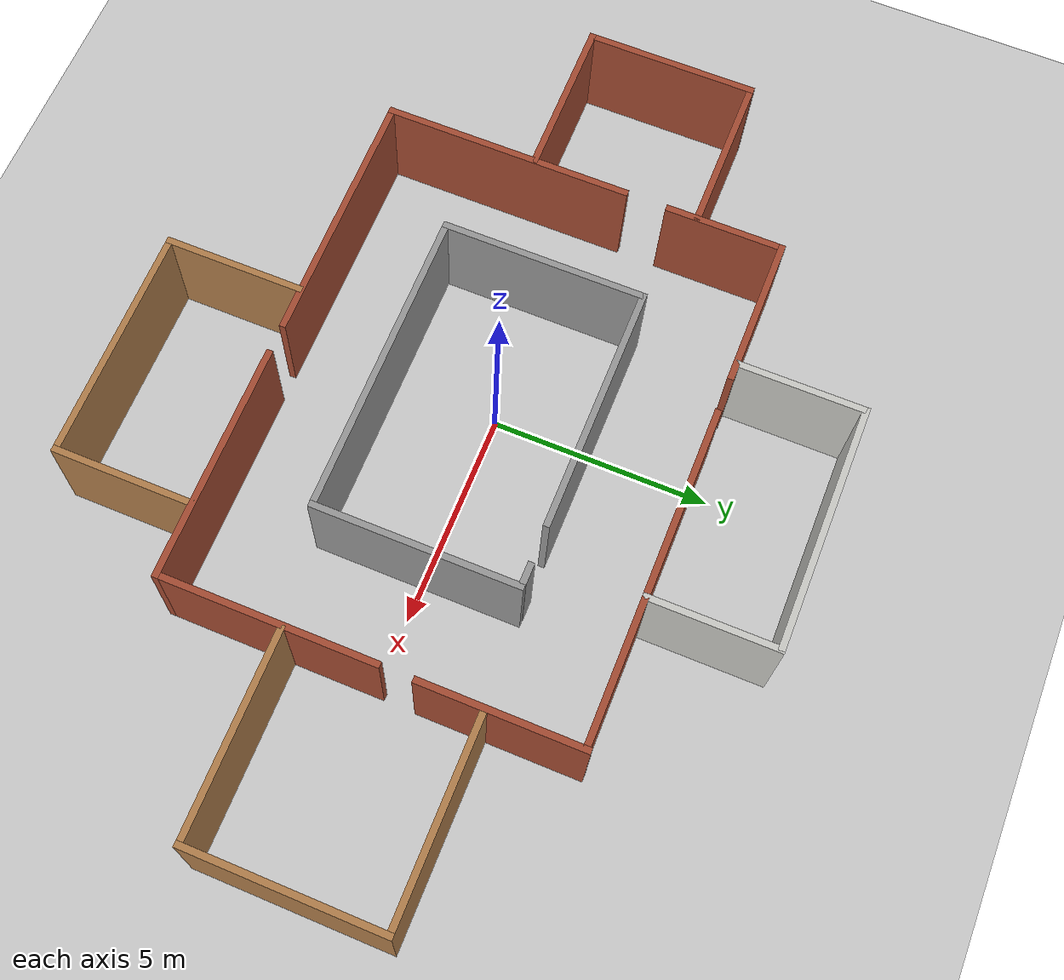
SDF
<sdf version="1.6">
 <world name="default">
  <light name="sun" type="directional">
   <pose>0 0 10 0 -0 0</pose>
   <diffuse>0.8 0.8 0.8 1</diffuse>
   <specular>0.2 0.2 0.2 1</specular>
   <attenuation>
    <range>1000</range>
    <constant>0.9</constant>
    <linear>0.01</linear>
    <quadratic>0.001</quadratic>
   </attenuation>
   <direction>-0.5 0.1 -0.9</direction>
  </light>
  <model name="ground_plane">
   <static>1</static>
   <link name="link">
    <collision name="collision">
     <geometry><plane><normal>0 0 1</normal><size>100 100</size></plane></geometry>
     <surface><friction><ode><mu>100</mu><mu2>50</mu2></ode></friction></surface>
    </collision>
    <visual name="visual">
     <cast_shadows>0</cast_shadows>
     <geometry><plane><normal>0 0 1</normal><size>100 100</size></plane></geometry>
     <material>
      <script><uri>file://media/materials/scripts/gazebo.material</uri><name>Gazebo/Grey</name></script>
     </material>
    </visual>
   </link>
  </model>
  <gravity>0 0 -9.8</gravity>
  <magnetic_field>6e-06 2.3e-05 -4.2e-05</magnetic_field>
  <atmosphere type="adiabatic"/>
  <physics name="default_physics" default="0" type="ode">
   <max_step_size>0.001</max_step_size>
   <real_time_factor>1</real_time_factor>
   <real_time_update_rate>1000</real_time_update_rate>
  </physics>
  <scene><ambient>0.4 0.4 0.4 1</ambient><background>0.7 0.7 0.7 1</background><shadows>1</shadows></scene>
  <audio><device>default</device></audio>
  <spherical_coordinates>
   <surface_model>EARTH_WGS84</surface_model>
   <latitude_deg>0</latitude_deg>
   <longitude_deg>0</longitude_deg>
   <elevation>0</elevation>
   <heading_deg>0</heading_deg>
  </spherical_coordinates>
  <model name="smallOffice">
   <pose>1.24633 -0.201638 0 0 -0 0</pose>
   <link name="Wall_16">
    <collision name="Wall_16_Collision">
     <geometry><box><size>5.8 0.15 2.5</size></box></geometry>
     <pose>0 0 1.25 0 -0 0</pose>
    </collision>
    <visual name="Wall_16_Visual">
     <pose>0 0 1.25 0 -0 0</pose>
     <geometry><box><size>5.8 0.15 2.5</size></box></geometry>
     <material>
      <script><uri>file://media/materials/scripts/gazebo.material</uri><name>Gazebo/Grey</name></script>
      <ambient>1 1 1 1</ambient>
     </material>
     <meta><layer>0</layer></meta>
    </visual>
    <pose>-1.39033 2.38964 0 0 -0 0</pose>
   </link>
   <link name="Wall_30">
    <collision name="Wall_30_Collision">
     <geometry><box><size>0.5 0.15 2.5</size></box></geometry>
     <pose>0 0 1.25 0 -0 0</pose>
    </collision>
    <visual name="Wall_30_Visual">
     <pose>0 0 1.25 0 -0 0</pose>
     <geometry><box><size>0.5 0.15 2.5</size></box></geometry>
     <material>
      <script><uri>file://media/materials/scripts/gazebo.material</uri><name>Gazebo/Grey</name></script>
      <ambient>1 1 1 1</ambient>
     </material>
     <meta><layer>0</layer></meta>
    </visual>
    <pose>2.57731 2.39943 0 0 -0 0</pose>
   </link>
   <link name="Wall_34">
    <collision name="Wall_34_Collision">
     <geometry><box><size>3.75 0.15 2.5</size></box></geometry>
     <pose>0 0 1.25 0 -0 0</pose>
    </collision>
    <visual name="Wall_34_Visual">
     <pose>0 0 1.25 0 -0 0</pose>
     <geometry><box><size>3.75 0.15 2.5</size></box></geometry>
     <material>
      <script><uri>file://media/materials/scripts/gazebo.material</uri><name>Gazebo/Bricks</name></script>
      <ambient>0.760784 0.662745 0.627451 1</ambient>
     </material>
     <meta><layer>0</layer></meta>
    </visual>
    <pose>5.47021 3.01648 0 0 -0 -1.5708</pose>
   </link>
   <link name="Wall_36">
    <collision name="Wall_36_Collision">
     <geometry><box><size>5 0.15 2.5</size></box></geometry>
     <pose>0 0 1.25 0 -0 0</pose>
    </collision>
    <visual name="Wall_36_Visual">
     <pose>0 0 1.25 0 -0 0</pose>
     <geometry><box><size>5 0.15 2.5</size></box></geometry>
     <material>
      <script><uri>file://media/materials/scripts/gazebo.material</uri><name>Gazebo/Bricks</name></script>
      <ambient>0.760784 0.662745 0.627451 1</ambient>
     </material>
     <meta><layer>0</layer></meta>
    </visual>
    <pose>5.4599 -2.0588 0 0 -0 -1.5708</pose>
   </link>
   <link name="Wall_41">
    <collision name="Wall_41_Collision">
     <geometry><box><size>4.75 0.15 2.5</size></box></geometry>
     <pose>0 0 1.25 0 -0 0</pose>
    </collision>
    <visual name="Wall_41_Visual">
     <pose>0 0 1.25 0 -0 0</pose>
     <geometry><box><size>4.75 0.15 2.5</size></box></geometry>
     <material>
      <script><uri>file://media/materials/scripts/gazebo.material</uri><name>Gazebo/Wood</name></script>
      <ambient>0.760784 0.662745 0.627451 1</ambient>
     </material>
     <meta><layer>0</layer></meta>
    </visual>
    <pose>7.82288 2.66227 0 0 -0 0</pose>
   </link>
   <link name="Wall_42">
    <collision name="Wall_42_Collision">
     <geometry><box><size>4.5 0.15 2.5</size></box></geometry>
     <pose>0 0 1.25 0 -0 0</pose>
    </collision>
    <visual name="Wall_42_Visual">
     <pose>0 0 1.25 0 -0 0</pose>
     <geometry><box><size>4.5 0.15 2.5</size></box></geometry>
     <material>
      <script><uri>file://media/materials/scripts/gazebo.material</uri><name>Gazebo/Wood</name></script>
      <ambient>0.760784 0.662745 0.627451 1</ambient>
     </material>
     <meta><layer>0</layer></meta>
    </visual>
    <pose>10.1229 0.487267 0 0 -0 -1.5708</pose>
   </link>
   <link name="Wall_43">
    <collision name="Wall_43_Collision">
     <geometry><box><size>4.75 0.15 2.5</size></box></geometry>
     <pose>0 0 1.25 0 -0 0</pose>
    </collision>
    <visual name="Wall_43_Visual">
     <pose>0 0 1.25 0 -0 0</pose>
     <geometry><box><size>4.75 0.15 2.5</size></box></geometry>
     <material>
      <script><uri>file://media/materials/scripts/gazebo.material</uri><name>Gazebo/Wood</name></script>
      <ambient>0.760784 0.662745 0.627451 1</ambient>
     </material>
     <meta><layer>0</layer></meta>
    </visual>
    <pose>7.82288 -1.68773 0 0 -0 3.14159</pose>
   </link>
   <link name="Wall_46">
    <collision name="Wall_46_Collision">
     <geometry><box><size>5.5 0.15 2.5</size></box></geometry>
     <pose>0 0 1.25 0 -0 0</pose>
    </collision>
    <visual name="Wall_46_Visual">
     <pose>0 0 1.25 0 -0 0</pose>
     <geometry><box><size>5.5 0.15 2.5</size></box></geometry>
     <material>
      <script><uri>file://media/materials/scripts/gazebo.material</uri><name>Gazebo/Bricks</name></script>
      <ambient>0.760784 0.662745 0.627451 1</ambient>
     </material>
     <meta><layer>0</layer></meta>
    </visual>
    <pose>2.7849 -4.4838 0 0 -0 3.14159</pose>
   </link>
   <link name="Wall_48">
    <collision name="Wall_48_Collision">
     <geometry><box><size>6 0.15 2.5</size></box></geometry>
     <pose>0 0 1.25 0 -0 0</pose>
    </collision>
    <visual name="Wall_48_Visual">
     <pose>0 0 1.25 0 -0 0</pose>
     <geometry><box><size>6 0.15 2.5</size></box></geometry>
     <material>
      <script><uri>file://media/materials/scripts/gazebo.material</uri><name>Gazebo/Bricks</name></script>
      <ambient>0.760784 0.662745 0.627451 1</ambient>
     </material>
     <meta><layer>0</layer></meta>
    </visual>
    <pose>-3.56994 -4.48309 0 0 -0 3.14159</pose>
   </link>
   <link name="Wall_54">
    <collision name="Wall_54_Collision">
     <geometry><box><size>3.25 0.15 2.5</size></box></geometry>
     <pose>0 0 1.25 0 -0 0</pose>
    </collision>
    <visual name="Wall_54_Visual">
     <pose>0 0 1.25 0 -0 0</pose>
     <geometry><box><size>3.25 0.15 2.5</size></box></geometry>
     <material>
      <script><uri>file://media/materials/scripts/gazebo.material</uri><name>Gazebo/Wood</name></script>
      <ambient>1 1 1 1</ambient>
     </material>
     <meta><layer>0</layer></meta>
    </visual>
    <pose>-1.5452 -6.08171 0 0 -0 -1.5708</pose>
   </link>
   <link name="Wall_55">
    <collision name="Wall_55_Collision">
     <geometry><box><size>5.5 0.15 2.5</size></box></geometry>
     <pose>0 0 1.25 0 -0 0</pose>
    </collision>
    <visual name="Wall_55_Visual">
     <pose>0 0 1.25 0 -0 0</pose>
     <geometry><box><size>5.5 0.15 2.5</size></box></geometry>
     <material>
      <script><uri>file://media/materials/scripts/gazebo.material</uri><name>Gazebo/Wood</name></script>
      <ambient>1 1 1 1</ambient>
     </material>
     <meta><layer>0</layer></meta>
    </visual>
    <pose>1.1298 -7.63171 0 0 -0 0</pose>
   </link>
   <link name="Wall_56">
    <collision name="Wall_56_Collision">
     <geometry><box><size>3.25 0.15 2.5</size></box></geometry>
     <pose>0 0 1.25 0 -0 0</pose>
    </collision>
    <visual name="Wall_56_Visual">
     <pose>0 0 1.25 0 -0 0</pose>
     <geometry><box><size>3.25 0.15 2.5</size></box></geometry>
     <material>
      <script><uri>file://media/materials/scripts/gazebo.material</uri><name>Gazebo/Wood</name></script>
      <ambient>1 1 1 1</ambient>
     </material>
     <meta><layer>0</layer></meta>
    </visual>
    <pose>3.8048 -6.08171 0 0 -0 1.5708</pose>
   </link>
   <link name="Wall_59">
    <collision name="Wall_59_Collision">
     <geometry><box><size>4.75 0.15 2.5</size></box></geometry>
     <pose>0 0 1.25 0 -0 0</pose>
    </collision>
    <visual name="Wall_59_Visual">
     <pose>0 0 1.25 0 -0 0</pose>
     <geometry><box><size>4.75 0.15 2.5</size></box></geometry>
     <material>
      <script><uri>file://media/materials/scripts/gazebo.material</uri><name>Gazebo/Grey</name></script>
      <ambient>1 1 1 1</ambient>
     </material>
     <meta><layer>0</layer></meta>
    </visual>
    <pose>-4.21533 0.089638 0 0 -0 -1.5708</pose>
   </link>
   <link name="Wall_60">
    <collision name="Wall_60_Collision">
     <geometry><box><size>7.25 0.15 2.5</size></box></geometry>
     <pose>0 0 1.25 0 -0 0</pose>
    </collision>
    <visual name="Wall_60_Visual">
     <pose>0 0 1.25 0 -0 0</pose>
     <geometry><box><size>7.25 0.15 2.5</size></box></geometry>
     <material>
      <script><uri>file://media/materials/scripts/gazebo.material</uri><name>Gazebo/Grey</name></script>
      <ambient>1 1 1 1</ambient>
     </material>
     <meta><layer>0</layer></meta>
    </visual>
    <pose>-0.665328 -2.21036 0 0 -0 0</pose>
   </link>
   <link name="Wall_61">
    <collision name="Wall_61_Collision">
     <geometry><box><size>4.75 0.15 2.5</size></box></geometry>
     <pose>0 0 1.25 0 -0 0</pose>
    </collision>
    <visual name="Wall_61_Visual">
     <pose>0 0 1.25 0 -0 0</pose>
     <geometry><box><size>4.75 0.15 2.5</size></box></geometry>
     <material>
      <script><uri>file://media/materials/scripts/gazebo.material</uri><name>Gazebo/Grey</name></script>
      <ambient>1 1 1 1</ambient>
     </material>
     <meta><layer>0</layer></meta>
    </visual>
    <pose>2.88467 0.089638 0 0 -0 1.5708</pose>
   </link>
   <link name="Wall_63">
    <collision name="Wall_63_Collision">
     <geometry><box><size>5.75 0.15 2.5</size></box></geometry>
     <pose>0 0 1.25 0 -0 0</pose>
    </collision>
    <visual name="Wall_63_Visual">
     <pose>0 0 1.25 0 -0 0</pose>
     <geometry><box><size>5.75 0.15 2.5</size></box></geometry>
     <material>
      <script><uri>file://media/materials/scripts/gazebo.material</uri><name>Gazebo/Bricks</name></script>
      <ambient>0.760784 0.662745 0.627451 1</ambient>
     </material>
     <meta><layer>0</layer></meta>
    </visual>
    <pose>-6.49494 -1.68309 0 0 -0 1.5708</pose>
   </link>
   <link name="Wall_65">
    <collision name="Wall_65_Collision">
     <geometry><box><size>2.75 0.15 2.5</size></box></geometry>
     <pose>0 0 1.25 0 -0 0</pose>
    </collision>
    <visual name="Wall_65_Visual">
     <pose>0 0 1.25 0 -0 0</pose>
     <geometry><box><size>2.75 0.15 2.5</size></box></geometry>
     <material>
      <script><uri>file://media/materials/scripts/gazebo.material</uri><name>Gazebo/Bricks</name></script>
      <ambient>0.760784 0.662745 0.627451 1</ambient>
     </material>
     <meta><layer>0</layer></meta>
    </visual>
    <pose>-6.48418 3.46899 0 0 -0 1.5708</pose>
   </link>
   <link name="Wall_72">
    <collision name="Wall_72_Collision">
     <geometry><box><size>3.75 0.15 2.5</size></box></geometry>
     <pose>0 0 1.25 0 -0 0</pose>
    </collision>
    <visual name="Wall_72_Visual">
     <pose>0 0 1.25 0 -0 0</pose>
     <geometry><box><size>3.75 0.15 2.5</size></box></geometry>
     <material>
      <script><uri>file://media/materials/scripts/gazebo.material</uri><name>Gazebo/Bricks</name></script>
      <ambient>1 1 1 1</ambient>
     </material>
     <meta><layer>0</layer></meta>
    </visual>
    <pose>-8.32288 -1.0272 0 0 -0 3.14159</pose>
   </link>
   <link name="Wall_73">
    <collision name="Wall_73_Collision">
     <geometry><box><size>4 0.15 2.5</size></box></geometry>
     <pose>0 0 1.25 0 -0 0</pose>
    </collision>
    <visual name="Wall_73_Visual">
     <pose>0 0 1.25 0 -0 0</pose>
     <geometry><box><size>4 0.15 2.5</size></box></geometry>
     <material>
      <script><uri>file://media/materials/scripts/gazebo.material</uri><name>Gazebo/Bricks</name></script>
      <ambient>1 1 1 1</ambient>
     </material>
     <meta><layer>0</layer></meta>
    </visual>
    <pose>-10.1229 0.897804 0 0 -0 1.5708</pose>
   </link>
   <link name="Wall_74">
    <collision name="Wall_74_Collision">
     <geometry><box><size>3.75 0.15 2.5</size></box></geometry>
     <pose>0 0 1.25 0 -0 0</pose>
    </collision>
    <visual name="Wall_74_Visual">
     <pose>0 0 1.25 0 -0 0</pose>
     <geometry><box><size>3.75 0.15 2.5</size></box></geometry>
     <material>
      <script><uri>file://media/materials/scripts/gazebo.material</uri><name>Gazebo/Bricks</name></script>
      <ambient>1 1 1 1</ambient>
     </material>
     <meta><layer>0</layer></meta>
    </visual>
    <pose>-8.32288 2.8228 0 0 -0 0</pose>
   </link>
   <link name="Wall_76">
    <collision name="Wall_76_Collision">
     <geometry><box><size>3.5 0.15 2.5</size></box></geometry>
     <pose>0 0 1.25 0 -0 0</pose>
    </collision>
    <visual name="Wall_76_Visual">
     <pose>0 0 1.25 0 -0 0</pose>
     <geometry><box><size>3.5 0.15 2.5</size></box></geometry>
     <material>
      <script><uri>file://media/materials/scripts/gazebo.material</uri><name>Gazebo/Bricks</name></script>
      <ambient>0.760784 0.662745 0.627451 1</ambient>
     </material>
     <meta><layer>0</layer></meta>
    </visual>
    <pose>-4.80918 4.76899 0 0 -0 0</pose>
   </link>
   <link name="Wall_78">
    <collision name="Wall_78_Collision">
     <geometry><box><size>7.75 0.15 2.5</size></box></geometry>
     <pose>0 0 1.25 0 -0 0</pose>
    </collision>
    <visual name="Wall_78_Visual">
     <pose>0 0 1.25 0 -0 0</pose>
     <geometry><box><size>7.75 0.15 2.5</size></box></geometry>
     <material>
      <script><uri>file://media/materials/scripts/gazebo.material</uri><name>Gazebo/Bricks</name></script>
      <ambient>0.760784 0.662745 0.627451 1</ambient>
     </material>
     <meta><layer>0</layer></meta>
    </visual>
    <pose>1.57287 4.77535 0 0 -0 0</pose>
   </link>
   <link name="Wall_82">
    <collision name="Wall_82_Collision">
     <geometry><box><size>3 0.15 2.5</size></box></geometry>
     <pose>0 0 1.25 0 -0 0</pose>
    </collision>
    <visual name="Wall_82_Visual">
     <pose>0 0 1.25 0 -0 0</pose>
     <geometry><box><size>3 0.15 2.5</size></box></geometry>
     <material>
      <script><uri>file://media/materials/scripts/gazebo.material</uri><name>Gazebo/CeilingTiled</name></script>
      <ambient>0.435294 0.796078 0.67451 1</ambient>
     </material>
     <meta><layer>0</layer></meta>
    </visual>
    <pose>-3.46589 6.20671 0 0 -0 1.5708</pose>
   </link>
   <link name="Wall_83">
    <collision name="Wall_83_Collision">
     <geometry><box><size>5.75 0.15 2.5</size></box></geometry>
     <pose>0 0 1.25 0 -0 0</pose>
    </collision>
    <visual name="Wall_83_Visual">
     <pose>0 0 1.25 0 -0 0</pose>
     <geometry><box><size>5.75 0.15 2.5</size></box></geometry>
     <material>
      <script><uri>file://media/materials/scripts/gazebo.material</uri><name>Gazebo/CeilingTiled</name></script>
      <ambient>0.435294 0.796078 0.67451 1</ambient>
     </material>
     <meta><layer>0</layer></meta>
    </visual>
    <pose>-0.665891 7.63171 0 0 -0 0</pose>
   </link>
   <link name="Wall_84">
    <collision name="Wall_84_Collision">
     <geometry><box><size>3 0.15 2.5</size></box></geometry>
     <pose>0 0 1.25 0 -0 0</pose>
    </collision>
    <visual name="Wall_84_Visual">
     <pose>0 0 1.25 0 -0 0</pose>
     <geometry><box><size>3 0.15 2.5</size></box></geometry>
     <material>
      <script><uri>file://media/materials/scripts/gazebo.material</uri><name>Gazebo/CeilingTiled</name></script>
      <ambient>0.435294 0.796078 0.67451 1</ambient>
     </material>
     <meta><layer>0</layer></meta>
    </visual>
    <pose>2.13411 6.20671 0 0 -0 -1.5708</pose>
   </link>
   <static>1</static>
  </model>
 </world>
</sdf>
